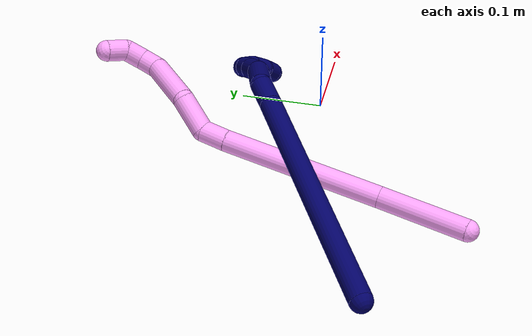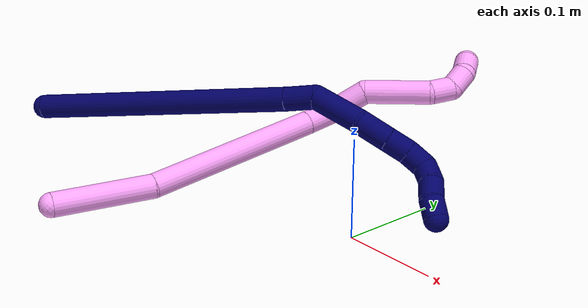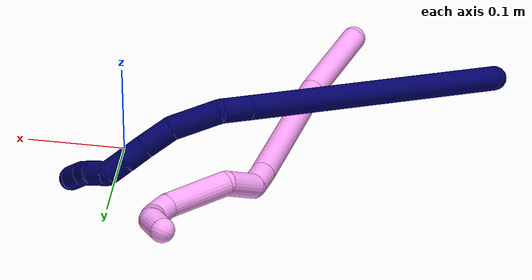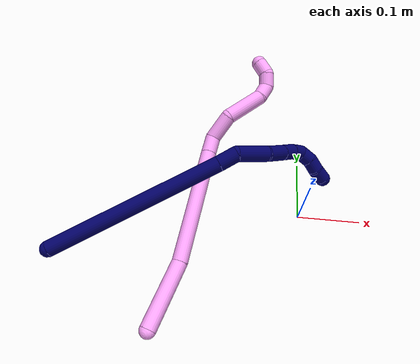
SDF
<sdf version="1.7">
 <world name="default">
  <model name="4">
   <static>0</static>
   <link name="4">
    <collision name="collision-cylinder-e_1_1_4">
     <pose>0.007667 0.036518 -0.036191 -2.3517 0.148024 -0.352071</pose>
     <geometry><cylinder><radius>0.0125</radius><length>0.103964</length></cylinder></geometry>
     <surface>
      <friction><ode><mu>1.16</mu><mu2>1.16</mu2><slip1>0</slip1><slip2>0</slip2></ode></friction>
      <contact><ode><kp>1e+06</kp><kd>1</kd><max_vel>0</max_vel><min_depth>0.001</min_depth></ode></contact>
     </surface>
    </collision>
    <visual name="visual-cylinder-e_1_1_4">
     <pose>0.007667 0.036518 -0.036191 -2.3517 0.148024 -0.352071</pose>
     <geometry><cylinder><radius>0.0125</radius><length>0.103964</length></cylinder></geometry>
     <material><ambient>1 0.65098 0.996078 1</ambient></material>
    </visual>
    <collision name="collision-cylinder-e_2_4_5">
     <pose>0.017934 0.149115 -0.124716 -2.17335 0.028155 -0.053531</pose>
     <geometry><cylinder><radius>0.0125</radius><length>0.184755</length></cylinder></geometry>
     <surface>
      <friction><ode><mu>1.16</mu><mu2>1.16</mu2><slip1>0</slip1><slip2>0</slip2></ode></friction>
      <contact><ode><kp>1e+06</kp><kd>1</kd><max_vel>0</max_vel><min_depth>0.001</min_depth></ode></contact>
     </surface>
    </collision>
    <visual name="visual-cylinder-e_2_4_5">
     <pose>0.017934 0.149115 -0.124716 -2.17335 0.028155 -0.053531</pose>
     <geometry><cylinder><radius>0.0125</radius><length>0.184755</length></cylinder></geometry>
     <material><ambient>1 0.65098 0.996078 1</ambient></material>
    </visual>
    <collision name="collision-cylinder-e_3_5_6">
     <pose>0.02152 0.237388 -0.184864 -2.14068 0.067945 -0.124125</pose>
     <geometry><cylinder><radius>0.0125</radius><length>0.029032</length></cylinder></geometry>
     <surface>
      <friction><ode><mu>1.16</mu><mu2>1.16</mu2><slip1>0</slip1><slip2>0</slip2></ode></friction>
      <contact><ode><kp>1e+06</kp><kd>1</kd><max_vel>0</max_vel><min_depth>0.001</min_depth></ode></contact>
     </surface>
    </collision>
    <visual name="visual-cylinder-e_3_5_6">
     <pose>0.02152 0.237388 -0.184864 -2.14068 0.067945 -0.124125</pose>
     <geometry><cylinder><radius>0.0125</radius><length>0.029032</length></cylinder></geometry>
     <material><ambient>1 0.65098 0.996078 1</ambient></material>
    </visual>
    <collision name="collision-cylinder-e_4_6_7">
     <pose>0.034564 0.267191 -0.197238 -1.82422 0.585386 -0.742564</pose>
     <geometry><cylinder><radius>0.0125</radius><length>0.04365</length></cylinder></geometry>
     <surface>
      <friction><ode><mu>1.16</mu><mu2>1.16</mu2><slip1>0</slip1><slip2>0</slip2></ode></friction>
      <contact><ode><kp>1e+06</kp><kd>1</kd><max_vel>0</max_vel><min_depth>0.001</min_depth></ode></contact>
     </surface>
    </collision>
    <visual name="visual-cylinder-e_4_6_7">
     <pose>0.034564 0.267191 -0.197238 -1.82422 0.585386 -0.742564</pose>
     <geometry><cylinder><radius>0.0125</radius><length>0.04365</length></cylinder></geometry>
     <material><ambient>1 0.65098 0.996078 1</ambient></material>
    </visual>
    <collision name="collision-cylinder-e_5_7_8">
     <pose>0.067538 0.300994 -0.223325 -2.49664 0.660234 -1.59596</pose>
     <geometry><cylinder><radius>0.0125</radius><length>0.068206</length></cylinder></geometry>
     <surface>
      <friction><ode><mu>1.16</mu><mu2>1.16</mu2><slip1>0</slip1><slip2>0</slip2></ode></friction>
      <contact><ode><kp>1e+06</kp><kd>1</kd><max_vel>0</max_vel><min_depth>0.001</min_depth></ode></contact>
     </surface>
    </collision>
    <visual name="visual-cylinder-e_5_7_8">
     <pose>0.067538 0.300994 -0.223325 -2.49664 0.660234 -1.59596</pose>
     <geometry><cylinder><radius>0.0125</radius><length>0.068206</length></cylinder></geometry>
     <material><ambient>1 0.65098 0.996078 1</ambient></material>
    </visual>
    <collision name="collision-cylinder-e_6_8_9">
     <pose>0.092059 0.32567 -0.252383 -2.297 0.307763 -0.664782</pose>
     <geometry><cylinder><radius>0.0125</radius><length>0.023808</length></cylinder></geometry>
     <surface>
      <friction><ode><mu>1.16</mu><mu2>1.16</mu2><slip1>0</slip1><slip2>0</slip2></ode></friction>
      <contact><ode><kp>1e+06</kp><kd>1</kd><max_vel>0</max_vel><min_depth>0.001</min_depth></ode></contact>
     </surface>
    </collision>
    <visual name="visual-cylinder-e_6_8_9">
     <pose>0.092059 0.32567 -0.252383 -2.297 0.307763 -0.664782</pose>
     <geometry><cylinder><radius>0.0125</radius><length>0.023808</length></cylinder></geometry>
     <material><ambient>1 0.65098 0.996078 1</ambient></material>
    </visual>
    <collision name="collision-cylinder-e_7_9_10">
     <pose>0.094918 0.345248 -0.261937 -1.75091 -0.06618 0.079306</pose>
     <geometry><cylinder><radius>0.0125</radius><length>0.022607</length></cylinder></geometry>
     <surface>
      <friction><ode><mu>1.16</mu><mu2>1.16</mu2><slip1>0</slip1><slip2>0</slip2></ode></friction>
      <contact><ode><kp>1e+06</kp><kd>1</kd><max_vel>0</max_vel><min_depth>0.001</min_depth></ode></contact>
     </surface>
    </collision>
    <visual name="visual-cylinder-e_7_9_10">
     <pose>0.094918 0.345248 -0.261937 -1.75091 -0.06618 0.079306</pose>
     <geometry><cylinder><radius>0.0125</radius><length>0.022607</length></cylinder></geometry>
     <material><ambient>1 0.65098 0.996078 1</ambient></material>
    </visual>
    <collision name="collision-cylinder-e_8_10_2">
     <pose>0.086924 0.365568 -0.266437 -1.83333 -0.649074 0.82697</pose>
     <geometry><cylinder><radius>0.0125</radius><length>0.023978</length></cylinder></geometry>
     <surface>
      <friction><ode><mu>1.16</mu><mu2>1.16</mu2><slip1>0</slip1><slip2>0</slip2></ode></friction>
      <contact><ode><kp>1e+06</kp><kd>1</kd><max_vel>0</max_vel><min_depth>0.001</min_depth></ode></contact>
     </surface>
    </collision>
    <visual name="visual-cylinder-e_8_10_2">
     <pose>0.086924 0.365568 -0.266437 -1.83333 -0.649074 0.82697</pose>
     <geometry><cylinder><radius>0.0125</radius><length>0.023978</length></cylinder></geometry>
     <material><ambient>1 0.65098 0.996078 1</ambient></material>
    </visual>
    <collision name="collision-sphere-2">
     <pose>0.079677 0.374792 -0.268915 0 -0 0</pose>
     <geometry><sphere><radius>0.0125</radius></sphere></geometry>
     <surface>
      <friction><ode><mu>1.16</mu><mu2>1.16</mu2><slip1>0</slip1><slip2>0</slip2></ode></friction>
      <contact><ode><kp>1e+06</kp><kd>1</kd><max_vel>0</max_vel><min_depth>0.001</min_depth></ode></contact>
     </surface>
    </collision>
    <visual name="visual-sphere-2">
     <pose>0.079677 0.374792 -0.268915 0 -0 0</pose>
     <geometry><sphere><radius>0.0125</radius></sphere></geometry>
     <material><ambient>1 0.65098 0.996078 1</ambient></material>
    </visual>
    <collision name="collision-sphere-10">
     <pose>0.09417 0.356345 -0.263958 0 -0 0</pose>
     <geometry><sphere><radius>0.0125</radius></sphere></geometry>
     <surface>
      <friction><ode><mu>1.16</mu><mu2>1.16</mu2><slip1>0</slip1><slip2>0</slip2></ode></friction>
      <contact><ode><kp>1e+06</kp><kd>1</kd><max_vel>0</max_vel><min_depth>0.001</min_depth></ode></contact>
     </surface>
    </collision>
    <visual name="visual-sphere-10">
     <pose>0.09417 0.356345 -0.263958 0 -0 0</pose>
     <geometry><sphere><radius>0.0125</radius></sphere></geometry>
     <material><ambient>1 0.65098 0.996078 1</ambient></material>
    </visual>
    <collision name="collision-sphere-9">
     <pose>0.095665 0.334152 -0.259917 0 -0 0</pose>
     <geometry><sphere><radius>0.0125</radius></sphere></geometry>
     <surface>
      <friction><ode><mu>1.16</mu><mu2>1.16</mu2><slip1>0</slip1><slip2>0</slip2></ode></friction>
      <contact><ode><kp>1e+06</kp><kd>1</kd><max_vel>0</max_vel><min_depth>0.001</min_depth></ode></contact>
     </surface>
    </collision>
    <visual name="visual-sphere-9">
     <pose>0.095665 0.334152 -0.259917 0 -0 0</pose>
     <geometry><sphere><radius>0.0125</radius></sphere></geometry>
     <material><ambient>1 0.65098 0.996078 1</ambient></material>
    </visual>
    <collision name="collision-sphere-4">
     <pose>0.015333 0.073036 -0.072383 0 -0 0</pose>
     <geometry><sphere><radius>0.0125</radius></sphere></geometry>
     <surface>
      <friction><ode><mu>1.16</mu><mu2>1.16</mu2><slip1>0</slip1><slip2>0</slip2></ode></friction>
      <contact><ode><kp>1e+06</kp><kd>1</kd><max_vel>0</max_vel><min_depth>0.001</min_depth></ode></contact>
     </surface>
    </collision>
    <visual name="visual-sphere-4">
     <pose>0.015333 0.073036 -0.072383 0 -0 0</pose>
     <geometry><sphere><radius>0.0125</radius></sphere></geometry>
     <material><ambient>1 0.65098 0.996078 1</ambient></material>
    </visual>
    <collision name="collision-sphere-1">
     <geometry><sphere><radius>0.0125</radius></sphere></geometry>
     <surface>
      <friction><ode><mu>1.16</mu><mu2>1.16</mu2><slip1>0</slip1><slip2>0</slip2></ode></friction>
      <contact><ode><kp>1e+06</kp><kd>1</kd><max_vel>0</max_vel><min_depth>0.001</min_depth></ode></contact>
     </surface>
    </collision>
    <visual name="visual-sphere-1">
     <geometry><sphere><radius>0.0125</radius></sphere></geometry>
     <material><ambient>1 0.65098 0.996078 1</ambient></material>
    </visual>
    <collision name="collision-sphere-8">
     <pose>0.088453 0.317187 -0.24485 0 -0 0</pose>
     <geometry><sphere><radius>0.0125</radius></sphere></geometry>
     <surface>
      <friction><ode><mu>1.16</mu><mu2>1.16</mu2><slip1>0</slip1><slip2>0</slip2></ode></friction>
      <contact><ode><kp>1e+06</kp><kd>1</kd><max_vel>0</max_vel><min_depth>0.001</min_depth></ode></contact>
     </surface>
    </collision>
    <visual name="visual-sphere-8">
     <pose>0.088453 0.317187 -0.24485 0 -0 0</pose>
     <geometry><sphere><radius>0.0125</radius></sphere></geometry>
     <material><ambient>1 0.65098 0.996078 1</ambient></material>
    </visual>
    <collision name="collision-sphere-5">
     <pose>0.020534 0.225194 -0.17705 0 -0 0</pose>
     <geometry><sphere><radius>0.0125</radius></sphere></geometry>
     <surface>
      <friction><ode><mu>1.16</mu><mu2>1.16</mu2><slip1>0</slip1><slip2>0</slip2></ode></friction>
      <contact><ode><kp>1e+06</kp><kd>1</kd><max_vel>0</max_vel><min_depth>0.001</min_depth></ode></contact>
     </surface>
    </collision>
    <visual name="visual-sphere-5">
     <pose>0.020534 0.225194 -0.17705 0 -0 0</pose>
     <geometry><sphere><radius>0.0125</radius></sphere></geometry>
     <material><ambient>1 0.65098 0.996078 1</ambient></material>
    </visual>
    <collision name="collision-sphere-6">
     <pose>0.022505 0.249581 -0.192678 0 -0 0</pose>
     <geometry><sphere><radius>0.0125</radius></sphere></geometry>
     <surface>
      <friction><ode><mu>1.16</mu><mu2>1.16</mu2><slip1>0</slip1><slip2>0</slip2></ode></friction>
      <contact><ode><kp>1e+06</kp><kd>1</kd><max_vel>0</max_vel><min_depth>0.001</min_depth></ode></contact>
     </surface>
    </collision>
    <visual name="visual-sphere-6">
     <pose>0.022505 0.249581 -0.192678 0 -0 0</pose>
     <geometry><sphere><radius>0.0125</radius></sphere></geometry>
     <material><ambient>1 0.65098 0.996078 1</ambient></material>
    </visual>
    <collision name="collision-sphere-7">
     <pose>0.046623 0.284801 -0.201799 0 -0 0</pose>
     <geometry><sphere><radius>0.0125</radius></sphere></geometry>
     <surface>
      <friction><ode><mu>1.16</mu><mu2>1.16</mu2><slip1>0</slip1><slip2>0</slip2></ode></friction>
      <contact><ode><kp>1e+06</kp><kd>1</kd><max_vel>0</max_vel><min_depth>0.001</min_depth></ode></contact>
     </surface>
    </collision>
    <visual name="visual-sphere-7">
     <pose>0.046623 0.284801 -0.201799 0 -0 0</pose>
     <geometry><sphere><radius>0.0125</radius></sphere></geometry>
     <material><ambient>1 0.65098 0.996078 1</ambient></material>
    </visual>
    <inertial>
     <pose>0.034544 0.189509 -0.148664 0 -0 0</pose>
     <mass>0.5</mass>
     <inertia>
      <ixx>0.000551</ixx>
      <ixy>0</ixy>
      <ixz>0</ixz>
      <iyy>-0.000412</iyy>
      <iyz>0</iyz>
      <izz>-0.000608</izz>
     </inertia>
    </inertial>
   </link>
   <pose>-0.21147 -0.19928 0.017238 0.760988 -0.270265 -0.153567</pose>
  </model>
  <model name="7">
   <static>0</static>
   <link name="7">
    <collision name="collision-cylinder-e_1_1_4">
     <pose>0.004244 0.004016 -0.138241 -3.11255 0.030675 -1.6254</pose>
     <geometry><cylinder><radius>0.0125</radius><length>0.276728</length></cylinder></geometry>
     <surface>
      <friction><ode><mu>1.16</mu><mu2>1.16</mu2><slip1>0</slip1><slip2>0</slip2></ode></friction>
      <contact><ode><kp>1e+06</kp><kd>1</kd><max_vel>0</max_vel><min_depth>0.001</min_depth></ode></contact>
     </surface>
    </collision>
    <visual name="visual-cylinder-e_1_1_4">
     <pose>0.004244 0.004016 -0.138241 -3.11255 0.030675 -1.6254</pose>
     <geometry><cylinder><radius>0.0125</radius><length>0.276728</length></cylinder></geometry>
     <material><ambient>0.003922 0 0.403922 1</ambient></material>
    </visual>
    <collision name="collision-cylinder-e_2_4_5">
     <pose>0.008366 0.008241 -0.292268 -3.12841 -0.007664 1.05323</pose>
     <geometry><cylinder><radius>0.0125</radius><length>0.031577</length></cylinder></geometry>
     <surface>
      <friction><ode><mu>1.16</mu><mu2>1.16</mu2><slip1>0</slip1><slip2>0</slip2></ode></friction>
      <contact><ode><kp>1e+06</kp><kd>1</kd><max_vel>0</max_vel><min_depth>0.001</min_depth></ode></contact>
     </surface>
    </collision>
    <visual name="visual-cylinder-e_2_4_5">
     <pose>0.008366 0.008241 -0.292268 -3.12841 -0.007664 1.05323</pose>
     <geometry><cylinder><radius>0.0125</radius><length>0.031577</length></cylinder></geometry>
     <material><ambient>0.003922 0 0.403922 1</ambient></material>
    </visual>
    <collision name="collision-cylinder-e_3_5_6">
     <pose>0.021597 0.009435 -0.330186 -3.09705 0.542392 -2.98171</pose>
     <geometry><cylinder><radius>0.0125</radius><length>0.051732</length></cylinder></geometry>
     <surface>
      <friction><ode><mu>1.16</mu><mu2>1.16</mu2><slip1>0</slip1><slip2>0</slip2></ode></friction>
      <contact><ode><kp>1e+06</kp><kd>1</kd><max_vel>0</max_vel><min_depth>0.001</min_depth></ode></contact>
     </surface>
    </collision>
    <visual name="visual-cylinder-e_3_5_6">
     <pose>0.021597 0.009435 -0.330186 -3.09705 0.542392 -2.98171</pose>
     <geometry><cylinder><radius>0.0125</radius><length>0.051732</length></cylinder></geometry>
     <material><ambient>0.003922 0 0.403922 1</ambient></material>
    </visual>
    <collision name="collision-cylinder-e_4_6_7">
     <pose>0.044222 0.006758 -0.365574 2.87195 0.593242 2.3062</pose>
     <geometry><cylinder><radius>0.0125</radius><length>0.033176</length></cylinder></geometry>
     <surface>
      <friction><ode><mu>1.16</mu><mu2>1.16</mu2><slip1>0</slip1><slip2>0</slip2></ode></friction>
      <contact><ode><kp>1e+06</kp><kd>1</kd><max_vel>0</max_vel><min_depth>0.001</min_depth></ode></contact>
     </surface>
    </collision>
    <visual name="visual-cylinder-e_4_6_7">
     <pose>0.044222 0.006758 -0.365574 2.87195 0.593242 2.3062</pose>
     <geometry><cylinder><radius>0.0125</radius><length>0.033176</length></cylinder></geometry>
     <material><ambient>0.003922 0 0.403922 1</ambient></material>
    </visual>
    <collision name="collision-cylinder-e_5_7_8">
     <pose>0.059961 2.8e-05 -0.388106 2.82237 0.584647 2.1592</pose>
     <geometry><cylinder><radius>0.0125</radius><length>0.023427</length></cylinder></geometry>
     <surface>
      <friction><ode><mu>1.16</mu><mu2>1.16</mu2><slip1>0</slip1><slip2>0</slip2></ode></friction>
      <contact><ode><kp>1e+06</kp><kd>1</kd><max_vel>0</max_vel><min_depth>0.001</min_depth></ode></contact>
     </surface>
    </collision>
    <visual name="visual-cylinder-e_5_7_8">
     <pose>0.059961 2.8e-05 -0.388106 2.82237 0.584647 2.1592</pose>
     <geometry><cylinder><radius>0.0125</radius><length>0.023427</length></cylinder></geometry>
     <material><ambient>0.003922 0 0.403922 1</ambient></material>
    </visual>
    <collision name="collision-cylinder-e_6_8_9">
     <pose>0.073779 -0.004988 -0.405171 2.89627 0.741384 2.52727</pose>
     <geometry><cylinder><radius>0.0125</radius><length>0.021779</length></cylinder></geometry>
     <surface>
      <friction><ode><mu>1.16</mu><mu2>1.16</mu2><slip1>0</slip1><slip2>0</slip2></ode></friction>
      <contact><ode><kp>1e+06</kp><kd>1</kd><max_vel>0</max_vel><min_depth>0.001</min_depth></ode></contact>
     </surface>
    </collision>
    <visual name="visual-cylinder-e_6_8_9">
     <pose>0.073779 -0.004988 -0.405171 2.89627 0.741384 2.52727</pose>
     <geometry><cylinder><radius>0.0125</radius><length>0.021779</length></cylinder></geometry>
     <material><ambient>0.003922 0 0.403922 1</ambient></material>
    </visual>
    <collision name="collision-cylinder-e_7_9_10">
     <pose>0.089014 -0.001674 -0.417053 -2.2314 0.868642 -1.51731</pose>
     <geometry><cylinder><radius>0.0125</radius><length>0.020646</length></cylinder></geometry>
     <surface>
      <friction><ode><mu>1.16</mu><mu2>1.16</mu2><slip1>0</slip1><slip2>0</slip2></ode></friction>
      <contact><ode><kp>1e+06</kp><kd>1</kd><max_vel>0</max_vel><min_depth>0.001</min_depth></ode></contact>
     </surface>
    </collision>
    <visual name="visual-cylinder-e_7_9_10">
     <pose>0.089014 -0.001674 -0.417053 -2.2314 0.868642 -1.51731</pose>
     <geometry><cylinder><radius>0.0125</radius><length>0.020646</length></cylinder></geometry>
     <material><ambient>0.003922 0 0.403922 1</ambient></material>
    </visual>
    <collision name="collision-cylinder-e_8_10_11">
     <pose>0.105628 0.008482 -0.422074 -1.7586 1.05266 -1.22389</pose>
     <geometry><cylinder><radius>0.0125</radius><length>0.020105</length></cylinder></geometry>
     <surface>
      <friction><ode><mu>1.16</mu><mu2>1.16</mu2><slip1>0</slip1><slip2>0</slip2></ode></friction>
      <contact><ode><kp>1e+06</kp><kd>1</kd><max_vel>0</max_vel><min_depth>0.001</min_depth></ode></contact>
     </surface>
    </collision>
    <visual name="visual-cylinder-e_8_10_11">
     <pose>0.105628 0.008482 -0.422074 -1.7586 1.05266 -1.22389</pose>
     <geometry><cylinder><radius>0.0125</radius><length>0.020105</length></cylinder></geometry>
     <material><ambient>0.003922 0 0.403922 1</ambient></material>
    </visual>
    <collision name="collision-cylinder-e_9_11_2">
     <pose>0.124018 0.016294 -0.425591 -2.29573 1.1867 -1.9646</pose>
     <geometry><cylinder><radius>0.0125</radius><length>0.02083</length></cylinder></geometry>
     <surface>
      <friction><ode><mu>1.16</mu><mu2>1.16</mu2><slip1>0</slip1><slip2>0</slip2></ode></friction>
      <contact><ode><kp>1e+06</kp><kd>1</kd><max_vel>0</max_vel><min_depth>0.001</min_depth></ode></contact>
     </surface>
    </collision>
    <visual name="visual-cylinder-e_9_11_2">
     <pose>0.124018 0.016294 -0.425591 -2.29573 1.1867 -1.9646</pose>
     <geometry><cylinder><radius>0.0125</radius><length>0.02083</length></cylinder></geometry>
     <material><ambient>0.003922 0 0.403922 1</ambient></material>
    </visual>
    <collision name="collision-sphere-2">
     <pose>0.133673 0.019215 -0.428179 0 -0 0</pose>
     <geometry><sphere><radius>0.0125</radius></sphere></geometry>
     <surface>
      <friction><ode><mu>1.16</mu><mu2>1.16</mu2><slip1>0</slip1><slip2>0</slip2></ode></friction>
      <contact><ode><kp>1e+06</kp><kd>1</kd><max_vel>0</max_vel><min_depth>0.001</min_depth></ode></contact>
     </surface>
    </collision>
    <visual name="visual-sphere-2">
     <pose>0.133673 0.019215 -0.428179 0 -0 0</pose>
     <geometry><sphere><radius>0.0125</radius></sphere></geometry>
     <material><ambient>0.003922 0 0.403922 1</ambient></material>
    </visual>
    <collision name="collision-sphere-11">
     <pose>0.114362 0.013373 -0.423003 0 -0 0</pose>
     <geometry><sphere><radius>0.0125</radius></sphere></geometry>
     <surface>
      <friction><ode><mu>1.16</mu><mu2>1.16</mu2><slip1>0</slip1><slip2>0</slip2></ode></friction>
      <contact><ode><kp>1e+06</kp><kd>1</kd><max_vel>0</max_vel><min_depth>0.001</min_depth></ode></contact>
     </surface>
    </collision>
    <visual name="visual-sphere-11">
     <pose>0.114362 0.013373 -0.423003 0 -0 0</pose>
     <geometry><sphere><radius>0.0125</radius></sphere></geometry>
     <material><ambient>0.003922 0 0.403922 1</ambient></material>
    </visual>
    <collision name="collision-sphere-10">
     <pose>0.096895 0.00359 -0.421144 0 -0 0</pose>
     <geometry><sphere><radius>0.0125</radius></sphere></geometry>
     <surface>
      <friction><ode><mu>1.16</mu><mu2>1.16</mu2><slip1>0</slip1><slip2>0</slip2></ode></friction>
      <contact><ode><kp>1e+06</kp><kd>1</kd><max_vel>0</max_vel><min_depth>0.001</min_depth></ode></contact>
     </surface>
    </collision>
    <visual name="visual-sphere-10">
     <pose>0.096895 0.00359 -0.421144 0 -0 0</pose>
     <geometry><sphere><radius>0.0125</radius></sphere></geometry>
     <material><ambient>0.003922 0 0.403922 1</ambient></material>
    </visual>
    <collision name="collision-sphere-9">
     <pose>0.081133 -0.006939 -0.412962 0 -0 0</pose>
     <geometry><sphere><radius>0.0125</radius></sphere></geometry>
     <surface>
      <friction><ode><mu>1.16</mu><mu2>1.16</mu2><slip1>0</slip1><slip2>0</slip2></ode></friction>
      <contact><ode><kp>1e+06</kp><kd>1</kd><max_vel>0</max_vel><min_depth>0.001</min_depth></ode></contact>
     </surface>
    </collision>
    <visual name="visual-sphere-9">
     <pose>0.081133 -0.006939 -0.412962 0 -0 0</pose>
     <geometry><sphere><radius>0.0125</radius></sphere></geometry>
     <material><ambient>0.003922 0 0.403922 1</ambient></material>
    </visual>
    <collision name="collision-sphere-4">
     <pose>0.008487 0.008032 -0.276481 0 -0 0</pose>
     <geometry><sphere><radius>0.0125</radius></sphere></geometry>
     <surface>
      <friction><ode><mu>1.16</mu><mu2>1.16</mu2><slip1>0</slip1><slip2>0</slip2></ode></friction>
      <contact><ode><kp>1e+06</kp><kd>1</kd><max_vel>0</max_vel><min_depth>0.001</min_depth></ode></contact>
     </surface>
    </collision>
    <visual name="visual-sphere-4">
     <pose>0.008487 0.008032 -0.276481 0 -0 0</pose>
     <geometry><sphere><radius>0.0125</radius></sphere></geometry>
     <material><ambient>0.003922 0 0.403922 1</ambient></material>
    </visual>
    <collision name="collision-sphere-1">
     <geometry><sphere><radius>0.0125</radius></sphere></geometry>
     <surface>
      <friction><ode><mu>1.16</mu><mu2>1.16</mu2><slip1>0</slip1><slip2>0</slip2></ode></friction>
      <contact><ode><kp>1e+06</kp><kd>1</kd><max_vel>0</max_vel><min_depth>0.001</min_depth></ode></contact>
     </surface>
    </collision>
    <visual name="visual-sphere-1">
     <geometry><sphere><radius>0.0125</radius></sphere></geometry>
     <material><ambient>0.003922 0 0.403922 1</ambient></material>
    </visual>
    <collision name="collision-sphere-8">
     <pose>0.066426 -0.003037 -0.39738 0 -0 0</pose>
     <geometry><sphere><radius>0.0125</radius></sphere></geometry>
     <surface>
      <friction><ode><mu>1.16</mu><mu2>1.16</mu2><slip1>0</slip1><slip2>0</slip2></ode></friction>
      <contact><ode><kp>1e+06</kp><kd>1</kd><max_vel>0</max_vel><min_depth>0.001</min_depth></ode></contact>
     </surface>
    </collision>
    <visual name="visual-sphere-8">
     <pose>0.066426 -0.003037 -0.39738 0 -0 0</pose>
     <geometry><sphere><radius>0.0125</radius></sphere></geometry>
     <material><ambient>0.003922 0 0.403922 1</ambient></material>
    </visual>
    <collision name="collision-sphere-5">
     <pose>0.008245 0.008449 -0.308054 0 -0 0</pose>
     <geometry><sphere><radius>0.0125</radius></sphere></geometry>
     <surface>
      <friction><ode><mu>1.16</mu><mu2>1.16</mu2><slip1>0</slip1><slip2>0</slip2></ode></friction>
      <contact><ode><kp>1e+06</kp><kd>1</kd><max_vel>0</max_vel><min_depth>0.001</min_depth></ode></contact>
     </surface>
    </collision>
    <visual name="visual-sphere-5">
     <pose>0.008245 0.008449 -0.308054 0 -0 0</pose>
     <geometry><sphere><radius>0.0125</radius></sphere></geometry>
     <material><ambient>0.003922 0 0.403922 1</ambient></material>
    </visual>
    <collision name="collision-sphere-6">
     <pose>0.034949 0.010422 -0.352317 0 -0 0</pose>
     <geometry><sphere><radius>0.0125</radius></sphere></geometry>
     <surface>
      <friction><ode><mu>1.16</mu><mu2>1.16</mu2><slip1>0</slip1><slip2>0</slip2></ode></friction>
      <contact><ode><kp>1e+06</kp><kd>1</kd><max_vel>0</max_vel><min_depth>0.001</min_depth></ode></contact>
     </surface>
    </collision>
    <visual name="visual-sphere-6">
     <pose>0.034949 0.010422 -0.352317 0 -0 0</pose>
     <geometry><sphere><radius>0.0125</radius></sphere></geometry>
     <material><ambient>0.003922 0 0.403922 1</ambient></material>
    </visual>
    <collision name="collision-sphere-7">
     <pose>0.053496 0.003094 -0.378831 0 -0 0</pose>
     <geometry><sphere><radius>0.0125</radius></sphere></geometry>
     <surface>
      <friction><ode><mu>1.16</mu><mu2>1.16</mu2><slip1>0</slip1><slip2>0</slip2></ode></friction>
      <contact><ode><kp>1e+06</kp><kd>1</kd><max_vel>0</max_vel><min_depth>0.001</min_depth></ode></contact>
     </surface>
    </collision>
    <visual name="visual-sphere-7">
     <pose>0.053496 0.003094 -0.378831 0 -0 0</pose>
     <geometry><sphere><radius>0.0125</radius></sphere></geometry>
     <material><ambient>0.003922 0 0.403922 1</ambient></material>
    </visual>
    <inertial>
     <pose>0.027158 0.004903 -0.241142 0 -0 0</pose>
     <mass>0.5</mass>
     <inertia>
      <ixx>-0.00187</ixx>
      <ixy>0</ixy>
      <ixz>0</ixz>
      <iyy>-0.001648</iyy>
      <iyz>0</iyz>
      <izz>-0.000156</izz>
     </inertia>
    </inertial>
   </link>
   <pose>-0.36875 -0.107882 0.050355 1.94326 1.08921 -0.654955</pose>
  </model>
 </world>
</sdf>
